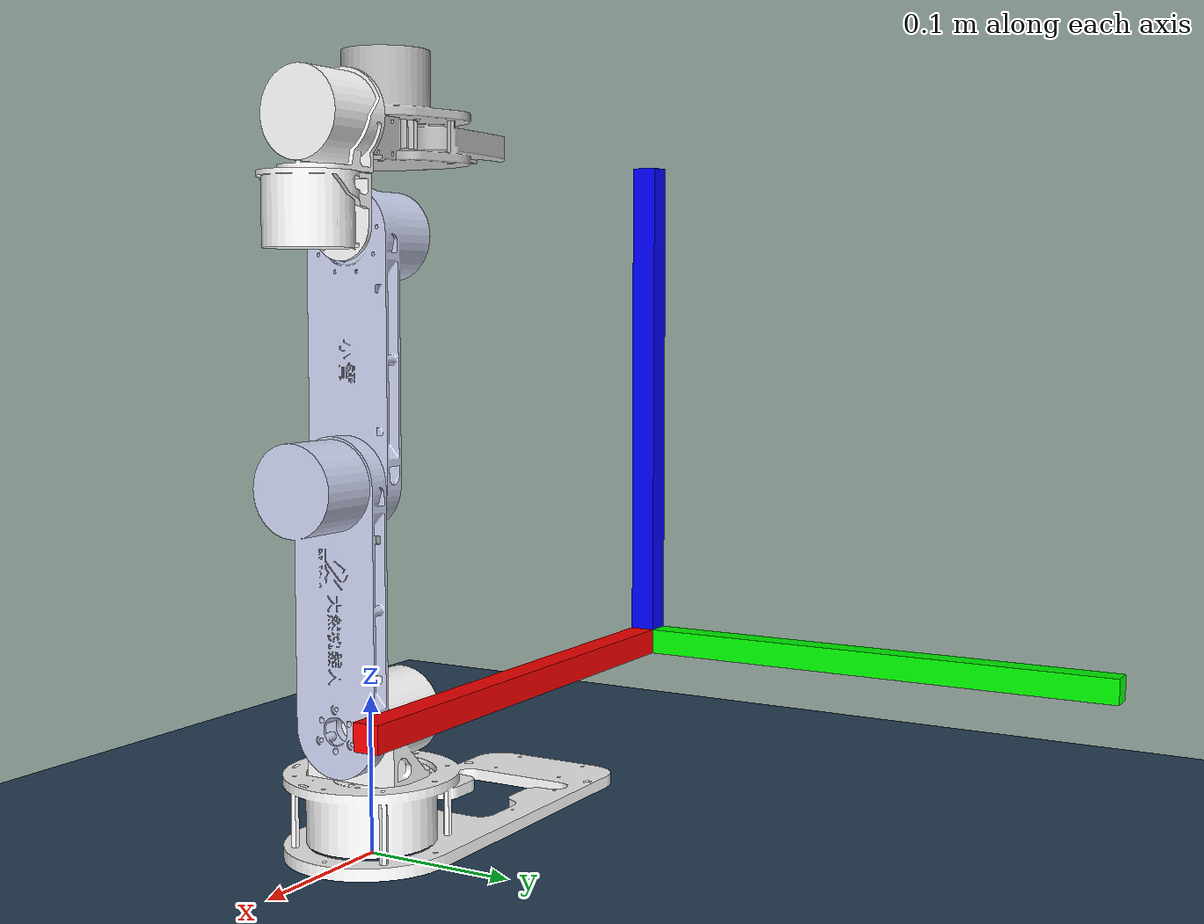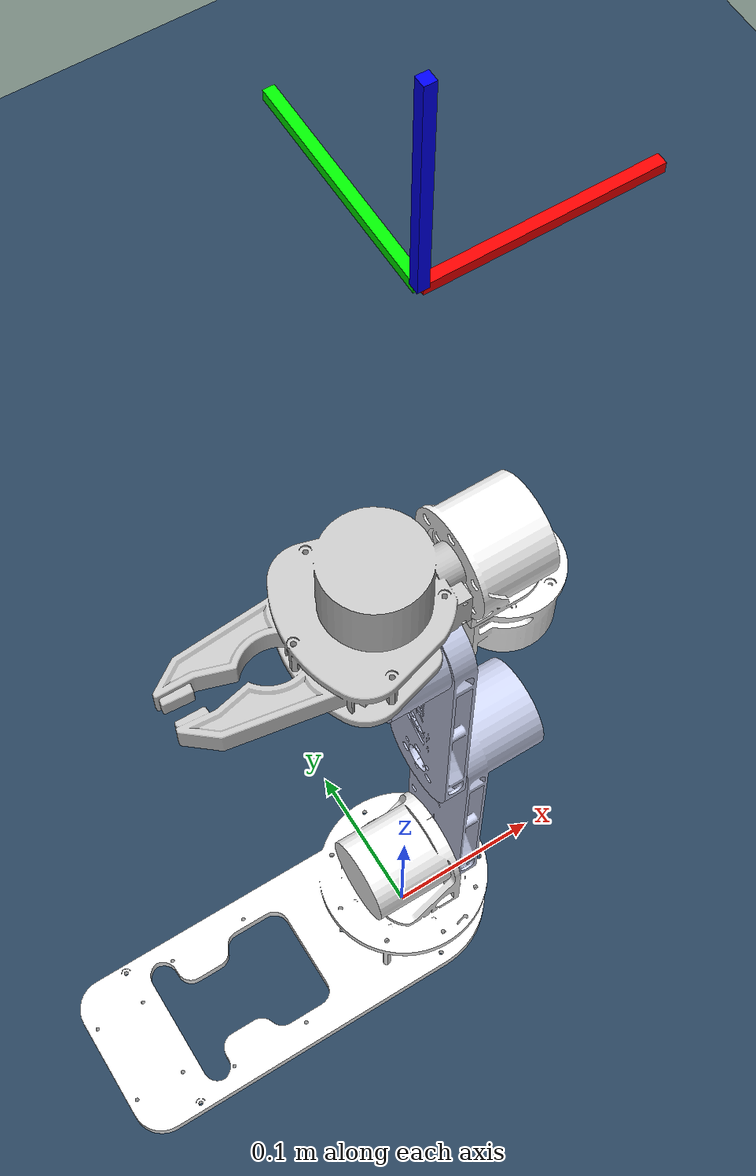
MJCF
<mujoco model="robot_arm scene">
  <include file="robot_arm.xml"/>

  <statistic center="0.3 0 0.4" extent="1"/>

  <visual>
    <headlight diffuse="0.6 0.6 0.6" ambient="0.3 0.3 0.3" specular="0 0 0"/>
    <rgba haze="0.15 0.25 0.35 1"/>
    <global azimuth="120" elevation="-20"/>
  </visual>

  <asset>
    <texture type="skybox" builtin="gradient" rgb1="0.3 0.5 0.7" rgb2="0 0 0" width="512" height="3072"/>
    <texture type="2d" name="groundplane" builtin="checker" mark="edge" rgb1="0.2 0.3 0.4" rgb2="0.1 0.2 0.3"
      markrgb="0.8 0.8 0.8" width="300" height="300"/>
    <material name="groundplane" texture="groundplane" texuniform="true" texrepeat="5 5" reflectance="0.2"/>
  </asset>

  <worldbody>
    <light pos="0 0 1.5" dir="0 0 -1" directional="true"/>
    <geom name="floor" size="0 0 0.05" type="plane" material="groundplane"/>
    <body mocap="true" name="mocap" pos="0.2 0.3 0.2">
        <site pos="0 0 0.1" size="0.005 0.005 0.1" type="box" name="mocap1" rgba="0 0 1 1"/>
        <site pos="0 0.1 0" size="0.005 0.1 0.005" type="box" name="mocap2" rgba="0 1 0 1"/>
        <site pos="0.1 0 0" size="0.1 0.005 0.005" type="box" name="mocap3" rgba="1 0 0 1"/>
    </body>
  </worldbody>

</mujoco>

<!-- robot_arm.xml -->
<mujoco model="robot_arm">
  <!-- 编译器设置：
       - angle="radian"：角度单位使用弧度（euler参数需用弧度值）
       - meshdir="meshes"：网格文件存放目录为"meshes"
       - autolimits="true"：自动计算关节限位以避免自碰撞 -->
  <compiler angle="radian" meshdir="meshes" autolimits="true"/>

  <!-- 仿真选项：
       - integrator="implicitfast"：使用隐式快速积分器，适合实时仿真场景 -->
  <option integrator="implicitfast"/>

  <!-- 默认参数定义：通过class分组复用属性，减少冗余 -->
  <default>
    <default class="arm">
      <!-- 材料属性默认值：镜面反射强度0.5，光泽度0.25 -->
      <material specular="0.5" shininess="0.25"/>

      <!-- 关节默认属性：
           - armature="0.1"：关节转动惯量
           - damping="1"：关节阻尼系数
           - type="hinge"：铰链关节（旋转关节）
           - range="-3.14 3.14"：关节角度范围（-π到π弧度） -->
      <joint armature="0.2" damping="1" type="hinge" range="-3.14 3.14"/>

      <!-- 执行器默认属性：
           - dyntype="none"：无动态类型
           - biastype="affine"：仿射动力学模型
           - forcerange="-10 10"：执行器力输出范围（±10N） -->
      <general dyntype="none" biastype="affine" forcerange="-10 10"/>

      <!-- 视觉几何默认属性：
           - type="mesh"：使用网格模型
           - contype="0"、conaffinity="0"：不参与碰撞检测
           - group="2"：视觉分组（用于渲染过滤） -->
      <default class="visual">
        <geom type="mesh" contype="0" conaffinity="0" group="2"/>
      </default>

      <!-- 碰撞几何默认属性：
           - type="mesh"：使用网格模型
           - group="3"：碰撞分组（用于碰撞过滤） -->
      <default class="collision">
        <geom type="mesh" group="3"/>
      </default>
    </default>
  </default>

  <!-- 资源定义：材料和网格文件 -->
  <asset>
    <!-- 材质定义（RGBA颜色值，A为透明度） -->
    <material class="arm" name="white" rgba="1 1 1 1"/>          <!-- 白色 -->
    <material class="arm" name="light_blue" rgba="0.796 0.824 0.937 1"/>  <!-- 浅蓝色 -->
    <material class="arm" name="grey" rgba="0.753 0.753 0.753 1"/>        <!-- 灰色 -->
    <material class="arm" name="world_grey" rgba="0.7 0.7 0.7 1"/>        <!-- 世界坐标系灰色 -->

    <!-- 网格文件定义（碰撞和视觉共用，通过class区分用途） -->
    <mesh name="base_link_mesh" file="base_link.STL"/>  <!-- 基座连杆网格 -->
    <mesh name="link_1_mesh" file="link_1.STL"/>        <!-- 连杆1网格 -->
    <mesh name="link_2_mesh" file="link_2.STL"/>        <!-- 连杆2网格 -->
    <mesh name="link_3_mesh" file="link_3.STL"/>        <!-- 连杆3网格 -->
    <mesh name="link_4_mesh" file="link_4.STL"/>        <!-- 连杆4网格 -->
    <mesh name="link_5_mesh" file="link_5.STL"/>        <!-- 连杆5网格 -->
    <mesh name="link_6_mesh" file="link_6.STL"/>        <!-- 连杆6网格 -->
  </asset>

  <!-- 世界体：包含所有物理实体的根节点 -->
  <worldbody>
    <!-- 光源设置：
         - name="top"：光源名称
         - pos="0 0 2"：光源位置（坐标原点上方2米）
         - mode="trackcom"：跟踪物体中心（使光照始终面向场景中心） -->
    <light name="top" pos="0 0 2" mode="trackcom"/>

      <!-- 基座链接（机器人根节点）：无额外旋转，省略euler（默认0 0 0） -->
      <body name="base_link" childclass="arm">
        <!-- 惯性参数：对角线惯性矩阵（0.1,0.1,0.1），满足正定要求 -->
        <inertial mass="0.375659879307536"
          pos="-0.0388232107706779 3.72396888084995E-05 0.0209550646938778"
          fullinertia="0.1 0.1 0.1 0 0 0"/>

        <!-- 基座视觉/碰撞几何 -->
        <geom mesh="base_link_mesh" material="white" class="visual"/>
        <geom mesh="base_link_mesh" class="collision"/>

        <!-- 关节1和link_1：原rpy="0 0 -1.5708" → MuJoCo euler（Z-Y-X）对应"0 0 -1.5708"（仅绕Z轴转） -->
        <body name="link_1" pos="0 0 0.0503" euler="0 0 -1.5708">
          <!-- 关节1：绕Z轴旋转，范围±π -->
          <joint name="joint_1" axis="0 0 1" range="-3.14 3.14"/>

          <!-- 连杆1惯性参数 -->
          <inertial mass="0.156385897016896"
            pos="-5.63085350857487E-06 -0.00560351869705136 0.0318181204775903"
            fullinertia="0.1 0.1 0.1 0 0 0"/>

          <!-- 连杆1视觉/碰撞几何 -->
          <geom mesh="link_1_mesh" material="white" class="visual"/>
          <geom mesh="link_1_mesh" class="collision"/>

          <!-- 关节2和link_2：原rpy="1.5708 -1.5651 0" → 转换为MuJoCo euler（Z-Y-X）："0 -1.5651 1.5708"
               （URDF的X→Y→Z 对应 MuJoCo的Z→Y→X，需调整角度顺序：原α=1.5708,X；β=-1.5651,Y；γ=0,Z → euler="γ β α"） -->
          <body name="link_2" pos="0 0.0185 0.035" euler="1.5708 0 1.5708">
            <!-- 关节2：绕-Z轴旋转，范围±π/2 -->
            <joint name="joint_2" axis="0 0 -1" range="-1.57 1.57"/>

            <!-- 连杆2惯性参数 -->
            <inertial mass="0.181748007640186"
              pos="0.121025012481005 -1.62375377122692E-05 -0.0242549258047306"
              fullinertia="0.1 0.1 0.1 0 0 0"/>

            <!-- 连杆2视觉/碰撞几何 -->
            <geom mesh="link_2_mesh" material="light_blue" class="visual"/>
            <geom mesh="link_2_mesh" class="collision"/>

            <!-- 关节3和link_3：无额外旋转，省略euler（默认0 0 0） -->
            <body name="link_3" pos="0.15 0 -0.0044">
              <!-- 关节3：绕Z轴旋转，范围±2.57 -->
              <joint name="joint_3" axis="0 0 1" range="-2.57 2.57"/>

              <!-- 连杆3惯性参数 -->
              <inertial mass="0.166528397754264"
                pos="0.119206812196477 -1.81795165103412E-05 0.0215976443773329"
                fullinertia="0.1 0.1 0.1 0 0 0"/>

              <!-- 连杆3视觉/碰撞几何 -->
              <geom mesh="link_3_mesh" material="light_blue" class="visual"/>
              <geom mesh="link_3_mesh" class="collision"/>

              <!-- 关节4和link_4：原rpy="0 0 -1.5651" → MuJoCo euler对应"0 0 -1.5651"（仅绕Z轴转） -->
              <body name="link_4" pos="0.15 0 0.0035" euler="0 0 -1.5708">
                <!-- 关节4：绕-Z轴旋转，范围±π -->
                <joint name="joint_4" axis="0 0 -1" range="-3.14 3.14"/>

                <!-- 连杆4惯性参数 -->
                <inertial mass="0.109264788641728"
                  pos="-1.48574454818078E-08 0.0128323541378314 -0.033157535804722"
                  fullinertia="0.1 0.1 0.1 0 0 0"/>

                <!-- 连杆4视觉/碰撞几何 -->
                <geom mesh="link_4_mesh" material="white" class="visual"/>
                <geom mesh="link_4_mesh" class="collision"/>

                <!-- 关节5和link_5：原rpy="1.5708 0 0" → 转换为MuJoCo euler（Z-Y-X）："0 0 1.5708"
                     （原绕X轴转1.5708 → euler顺序调整后，仅需保留X轴角度在最后一位） -->
                <body name="link_5" pos="0 0.033 -0.03554" euler="1.5708 0 0">
                  <!-- 关节5：绕-Z轴旋转，范围±π -->
                  <joint name="joint_5" axis="0 0 -1" range="-3.14 3.14"/>

                  <!-- 连杆5惯性参数 -->
                  <inertial mass="0.113182480171704"
                    pos="-1.43431724468433E-08 0.0127862361544324 -0.0332400019515298"
                    fullinertia="0.1 0.1 0.1 0 0 0"/>

                  <!-- 连杆5视觉/碰撞几何 -->
                  <geom mesh="link_5_mesh" material="white" class="visual"/>
                  <geom mesh="link_5_mesh" class="collision"/>

                  <!-- 关节6和link_6：原rpy="-1.5708 0 0" → 转换为MuJoCo euler（Z-Y-X）："0 0 -1.5708" -->
                  <body name="link_6" pos="0 0.033 -0.03554" euler="-1.5708 0 0">
                    <!-- 关节6：绕Z轴旋转，范围±π -->
                    <joint name="joint_6" axis="0 0 1" range="-3.14 3.14"/>

                    <!-- 连杆6惯性参数：无多余空格，格式正确 -->
                    <inertial mass="0.243270290247563"
                      pos="-0.000202191869838614 0.00409019537321847 0.0546698484271652"
                      fullinertia="0.1 0.1 0.1 0 0 0"/>

                    <!-- 连杆6视觉/碰撞几何 -->
                    <geom mesh="link_6_mesh" material="grey" class="visual"/>
                    <geom mesh="link_6_mesh" class="collision"/>

                    <!-- 抓取点标记：无额外旋转，省略euler -->
                    <body name="grasp_point" pos="0 -0.0075 0.1409">
                      <site name="grasp_site" size="0.01" group="3"/> <!-- size为标记点大小（0.01m） -->
                    </body>
                  </body>
                </body>
              </body>
            </body>
          </body>
        </body>
      </body>
  </worldbody>

  <!-- 执行器定义：forcerange统一为±10N（符合力范围物理意义） -->
  <actuator>
    <general class="arm" name="actuator1" joint="joint_1" gainprm="1000" biasprm="0 -1000 -100" forcerange="-10 10"/>
    <general class="arm" name="actuator2" joint="joint_2" gainprm="1000" biasprm="0 -1000 -100" forcerange="-10 10"/>
    <general class="arm" name="actuator3" joint="joint_3" gainprm="1000" biasprm="0 -1000 -100" forcerange="-10 10"/>
    <general class="arm" name="actuator4" joint="joint_4" gainprm="1000" biasprm="0 -1000 -100" forcerange="-10 10"/>
    <general class="arm" name="actuator5" joint="joint_5" gainprm="1000" biasprm="0 -1000 -100" forcerange="-10 10"/>
    <general class="arm" name="actuator6" joint="joint_6" gainprm="1000" biasprm="0 -1000 -100" forcerange="-10 10"/>
  </actuator>

  <!-- 关键帧：预设home姿态（关节角度和控制量均为0） -->
  <keyframe>
    <key name="home" qpos="0 0 0 0 0 0" ctrl="0 0 0 0 0 0"/>
  </keyframe>

  <!-- 碰撞排除规则：可根据需要添加 -->
  <contact>
  </contact>
</mujoco>
